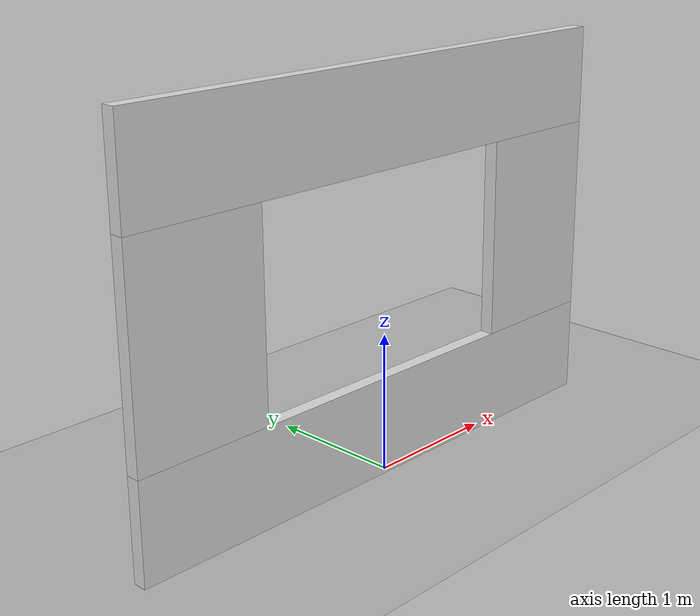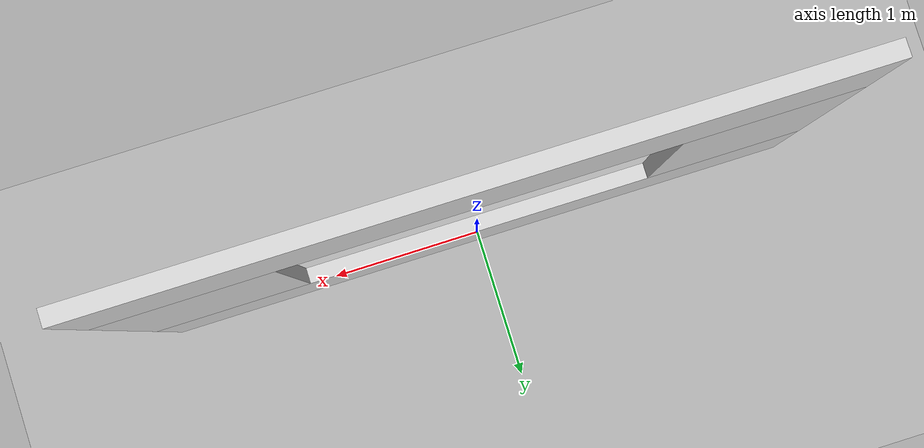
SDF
<?xml version="1.0" ?>
<sdf version="1.8">
  <world name="window_world">

    <physics name="1ms" type="ignored">
      <max_step_size>0.001</max_step_size>
      <real_time_factor>1.0</real_time_factor>
    </physics>

    <plugin filename="gz-sim-physics-system"
            name="gz::sim::systems::Physics"/>
    <plugin filename="gz-sim-user-commands-system"
            name="gz::sim::systems::UserCommands"/>
    <plugin filename="gz-sim-scene-broadcaster-system"
            name="gz::sim::systems::SceneBroadcaster"/>

    <light type="directional" name="sun">
      <cast_shadows>true</cast_shadows>
      <pose>0 0 10 0 0 0</pose>
      <diffuse>0.8 0.8 0.8 1</diffuse>
      <specular>0.2 0.2 0.2 1</specular>
      <direction>-0.5 0.1 -0.9</direction>
    </light>

    <model name="ground_plane">
      <static>true</static>
      <link name="link">
        <collision name="collision">
          <geometry>
            <plane>
              <normal>0 0 1</normal>
              <size>30 30</size>
            </plane>
          </geometry>
        </collision>
        <visual name="visual">
          <geometry>
            <plane>
              <normal>0 0 1</normal>
              <size>30 30</size>
            </plane>
          </geometry>
          <material>
            <ambient>0.7 0.7 0.7 1</ambient>
            <diffuse>0.7 0.7 0.7 1</diffuse>
          </material>
        </visual>
      </link>
    </model>

    <!-- One wall with one centered window opening -->
    <!-- Units are meters -->
    <!-- height = 113 in = 2.8702 -->
    <!-- window width = 87 in = 2.2098 -->
    <!-- window height = 57 in = 1.4478 -->
    <!-- assumed wall length = 4.2098 -->
    <!-- assumed wall thickness = 0.10 -->
    <model name="wall_one_window">
      <static>true</static>
      <pose>0 0 0 0 0 0</pose>

      <link name="wall_link">

        <!-- bottom -->
        <collision name="bottom_collision">
          <pose>0 0 0.3556 0 0 0</pose>
          <geometry>
            <box>
              <size>4.2098 0.10 0.7112</size>
            </box>
          </geometry>
        </collision>
        <visual name="bottom_visual">
          <pose>0 0 0.3556 0 0 0</pose>
          <geometry>
            <box>
              <size>4.2098 0.10 0.7112</size>
            </box>
          </geometry>
          <material>
            <ambient>0.85 0.85 0.85 1</ambient>
            <diffuse>0.85 0.85 0.85 1</diffuse>
          </material>
        </visual>

        <!-- top -->
        <collision name="top_collision">
          <pose>0 0 2.5146 0 0 0</pose>
          <geometry>
            <box>
              <size>4.2098 0.10 0.7112</size>
            </box>
          </geometry>
        </collision>
        <visual name="top_visual">
          <pose>0 0 2.5146 0 0 0</pose>
          <geometry>
            <box>
              <size>4.2098 0.10 0.7112</size>
            </box>
          </geometry>
          <material>
            <ambient>0.85 0.85 0.85 1</ambient>
            <diffuse>0.85 0.85 0.85 1</diffuse>
          </material>
        </visual>

        <!-- left side -->
        <collision name="left_collision">
          <pose>-1.6049 0 1.4351 0 0 0</pose>
          <geometry>
            <box>
              <size>1.0000 0.10 1.4478</size>
            </box>
          </geometry>
        </collision>
        <visual name="left_visual">
          <pose>-1.6049 0 1.4351 0 0 0</pose>
          <geometry>
            <box>
              <size>1.0000 0.10 1.4478</size>
            </box>
          </geometry>
          <material>
            <ambient>0.85 0.85 0.85 1</ambient>
            <diffuse>0.85 0.85 0.85 1</diffuse>
          </material>
        </visual>

        <!-- right side -->
        <collision name="right_collision">
          <pose>1.6049 0 1.4351 0 0 0</pose>
          <geometry>
            <box>
              <size>1.0000 0.10 1.4478</size>
            </box>
          </geometry>
        </collision>
        <visual name="right_visual">
          <pose>1.6049 0 1.4351 0 0 0</pose>
          <geometry>
            <box>
              <size>1.0000 0.10 1.4478</size>
            </box>
          </geometry>
          <material>
            <ambient>0.85 0.85 0.85 1</ambient>
            <diffuse>0.85 0.85 0.85 1</diffuse>
          </material>
        </visual>

      </link>
    </model>

  </world>
</sdf>
